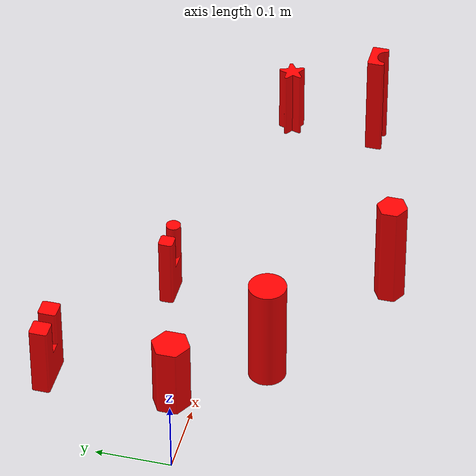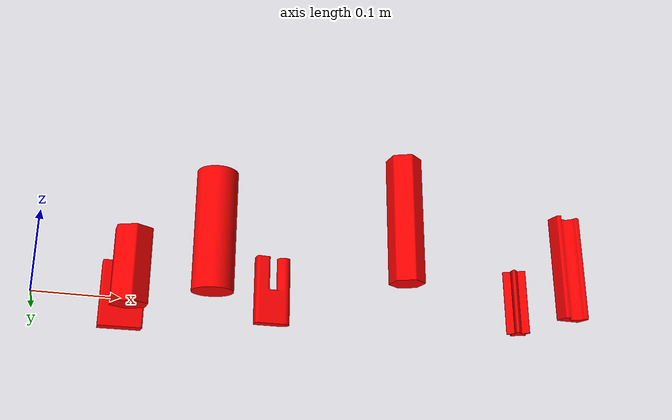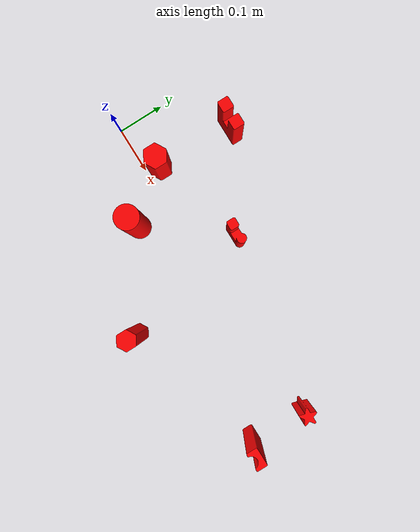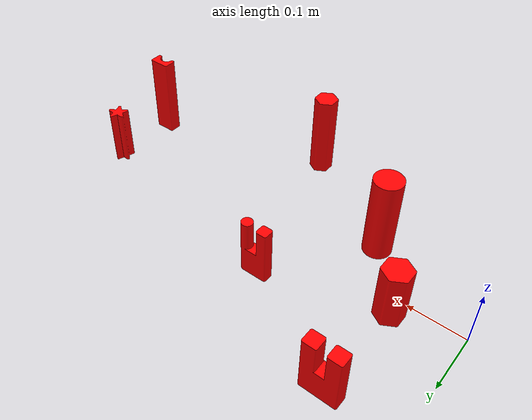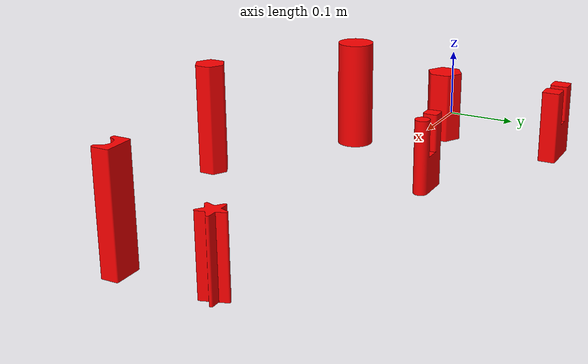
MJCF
<?xml version='1.0' encoding='utf-8'?>
<mujoco model="obj1">
  <asset>
    <mesh name="obj1" file="obj1.obj" scale="0.001 0.001 0.001" />
    <material name="mat1" rgba="1 0 0 1" />
  </asset>
  <worldbody>
    <body>
      <body name="object">
        <geom name="visual" mesh="obj1" type="mesh" group="1" contype="0" conaffinity="0" material="mat1" />
        <geom name="collision" mesh="obj1" type="mesh" group="0" density="50" friction="0.95 0.3 0.1" solimp="0.998 0.998 0.001" solref="0.001 1" condim="4" />
      </body>
      <site name="bottom_site" pos="0 0 -0.025" size="0.005" rgba="0 0 0 0" />
      <site name="top_site" pos="0 0 0.025" size="0.005" rgba="0 0 0 0" />
      <site name="horizontal_radius_site" pos="0.03 0.03 0" size="0.005" rgba="0 0 0 0" />
    </body>
  </worldbody>
</mujoco>
